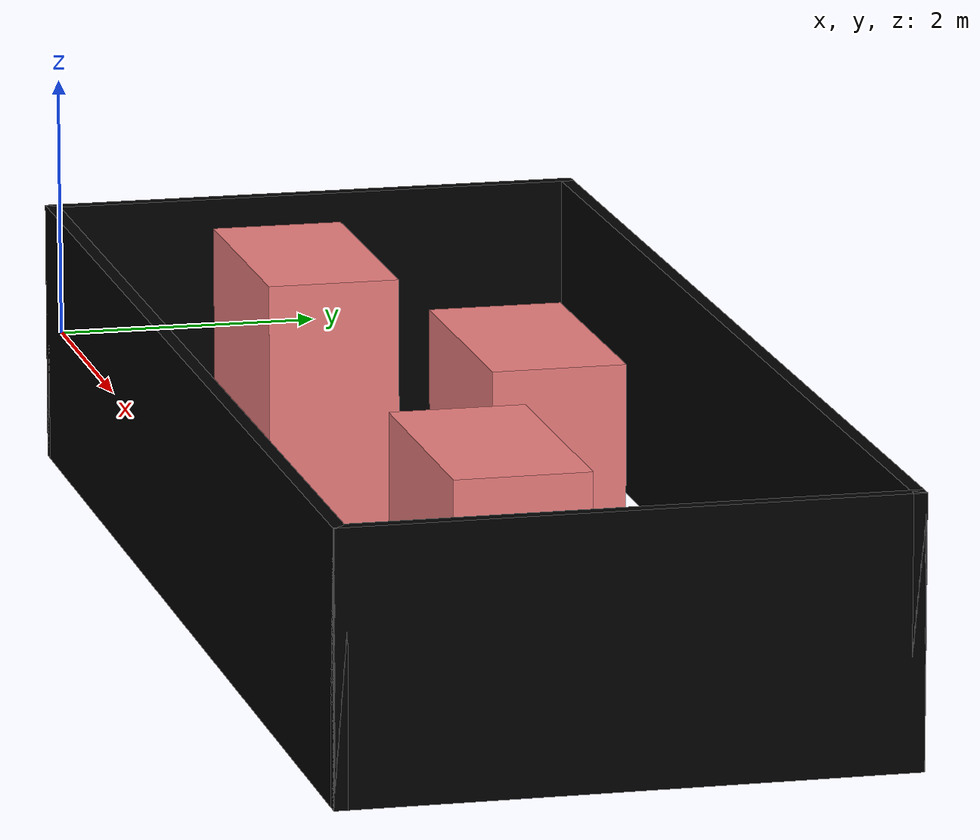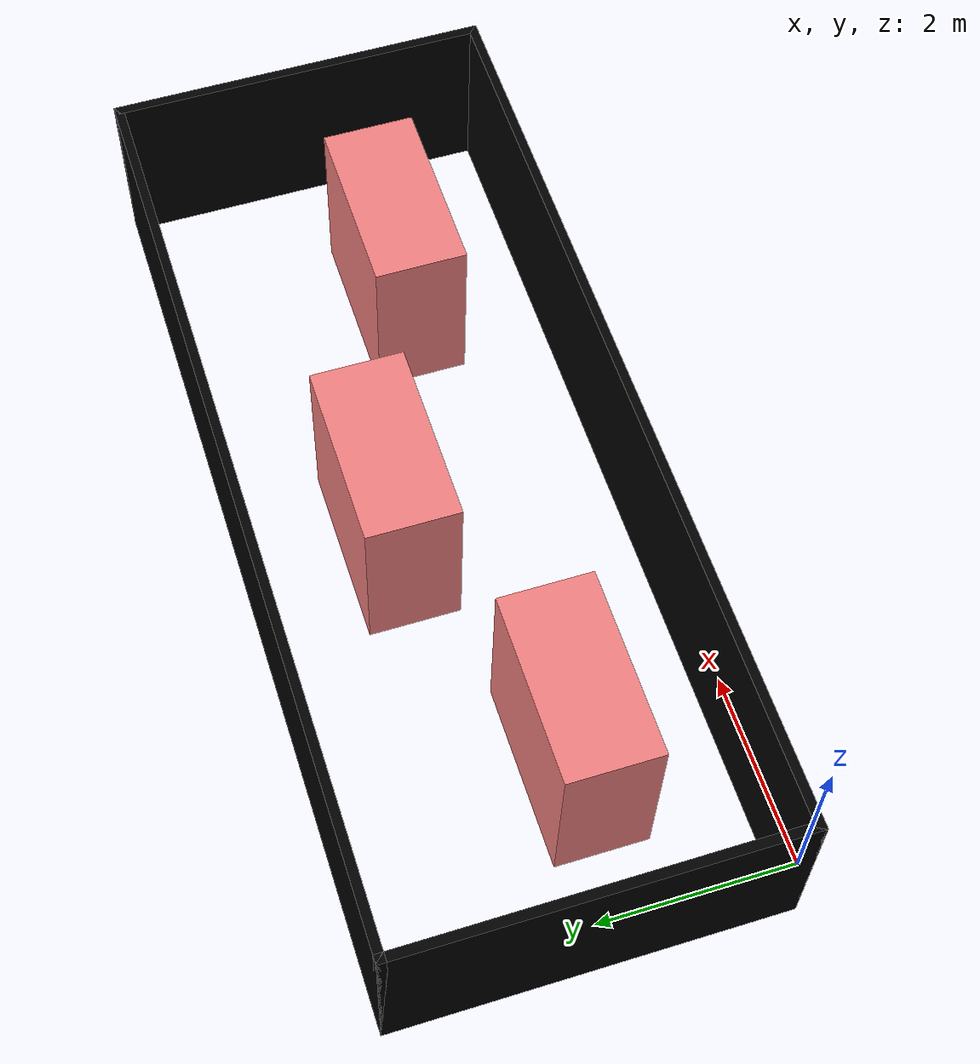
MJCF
<mujoco model="robot">
  <default class="default">
    <geom rgba="0.94 0.5 0.5 1" mass="1.0"/>
  </default>
  <worldbody>
    <!-- border -->
    <geom type="box" pos="5 -0.05 0" size="5.1 0.05 1" rgba="0 0 0 1" />
    <geom type="box" pos="5 4.05 0" size="5.1 0.05 1" rgba="0 0 0 1" />
    <geom type="box" pos="-0.05 2 0" size="0.05 2.1 1" rgba="0 0 0 1" />
    <geom type="box" pos="10.05 2 0" size="0.05 2.1 1" rgba="0 0 0 1" />

    <!-- obstacles 1-->

    <!-- obstacles 2-->
    <geom type="box" pos="2 1.5 0" size="1 0.5 1" euler="0 0 0" class="default" />
    <geom type="box" pos="5 2.5 0" size="1 0.5 1" euler="0 0 0" class="default" />
    <geom type="box" pos="8 1.5 0" size="1 0.5 1" euler="0 0 0" class="default" />

    <!-- robot -->
    <body name="robot" pos="0 0 0">
      <geom type="sphere" pos="0 0 0" size="0.01" rgba="0 0 1 1" mass="1" />
      <joint type="slide" name="x" axis="1 0 0" range="0 10" limited="true"/>
      <joint type="slide" name="y" axis="0 1 0" range="0 4" limited="true"/>
    </body>
  </worldbody>
</mujoco>
